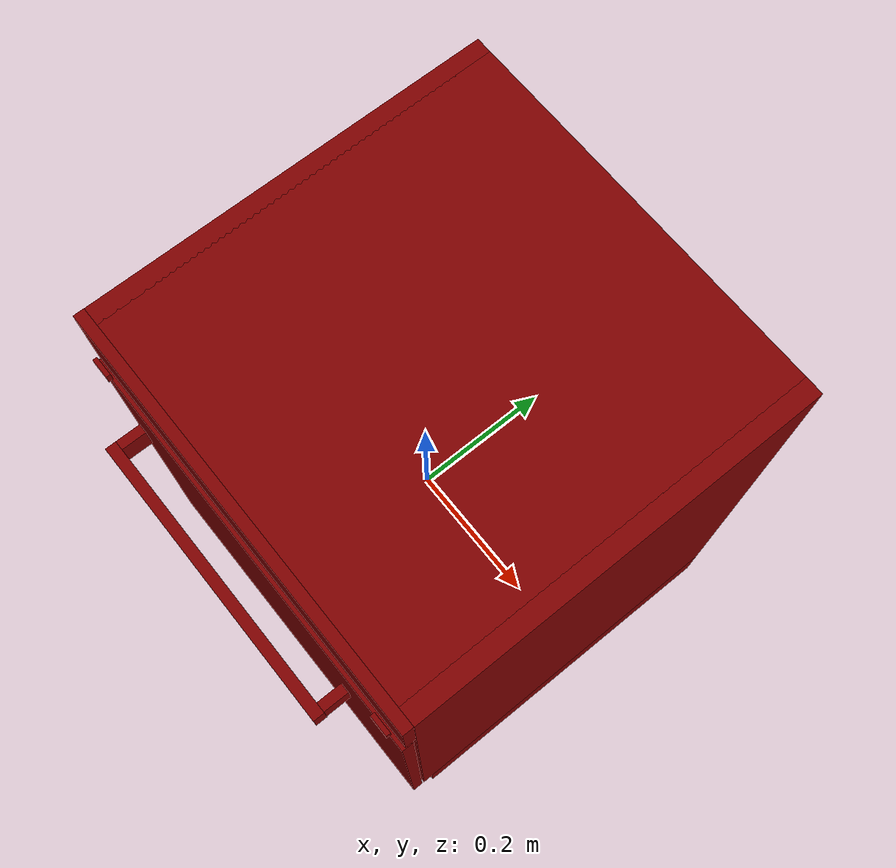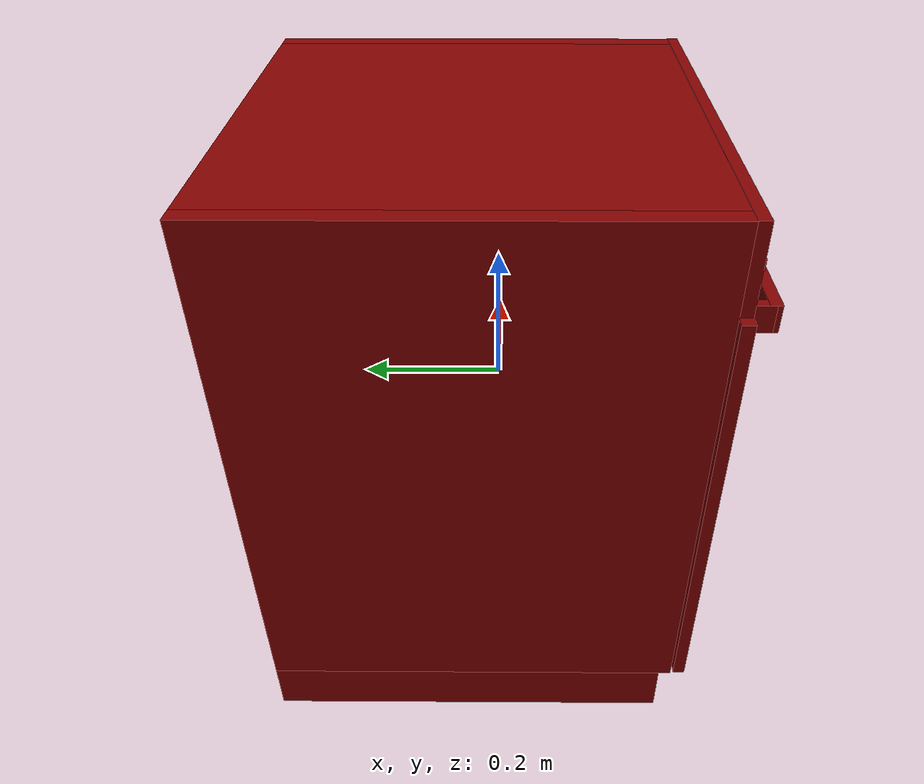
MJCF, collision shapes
<?xml version='1.0' encoding='UTF-8'?>
<mujoco model="model">
  <option timestep="0.002" gravity="0.0 0.0 -9.81"/>
  <compiler angle="radian"/>
  <asset>
    <mesh file="visuals/button_lock.obj" name="button_lock_vis"/>
    <mesh file="visuals/button_power.obj" name="button_power_vis"/>
    <mesh file="visuals/Body001.obj" name="Body001_vis"/>
    <mesh file="visuals/door.obj" name="door_vis"/>
    <mesh file="visuals/rack0.obj" name="rack0_vis"/>
    <mesh file="visuals/rack1.obj" name="rack1_vis"/>
    <texture file="visuals/T_BC001.png" name="Body001_material" type="2d"/>
    <material name="Body001_material" rgba="1 1 1 1.0" texture="Body001_material" shininess="0.5" specular="1.5"/>
    <texture file="visuals/T_BC001.png" name="button_lock_material" type="2d"/>
    <material name="button_lock_material" rgba="1 1 1 1.0" texture="button_lock_material" shininess="0.5" specular="0.3103448502657381"/>
    <texture file="visuals/T_BC001.png" name="button_power_material" type="2d"/>
    <material name="button_power_material" rgba="1 1 1 1.0" texture="button_power_material" shininess="0.5" specular="0.3103448502657381"/>
    <texture file="visuals/T_BC001.png" name="door_material" type="2d"/>
    <material name="door_material" rgba="1 1 1 1.0" texture="door_material" shininess="0.5" specular="1.5"/>
    <texture file="visuals/T_BC001.png" name="rack0_material" type="2d"/>
    <material name="rack0_material" rgba="1 1 1 1.0" texture="rack0_material" shininess="0.5" specular="2"/>
    <texture file="visuals/T_BC001.png" name="rack1_material" type="2d"/>
    <material name="rack1_material" rgba="1 1 1 1.0" texture="rack1_material" shininess="0.5" specular="2"/>
  </asset>
  <default>
    <default class="visual">
      <geom conaffinity="0" contype="0" group="1" type="mesh"/>
    </default>
    <default class="collision">
      <geom group="0" rgba="0.5 0 0 0.5"/>
    </default>
    <default class="spawn">
      <geom group="0" rgba="1 1 1 0.5" contype="0" conaffinity="0"/>
      <site group="0" rgba="1 1 1 0.5"/>
    </default>
    <default class="region">
      <geom group="1" conaffinity="0" contype="0" rgba="0 1 0 0"/>
    </default>
  </default>
  <worldbody>
    <body>
      <body name="object">
        <geom mesh="Body001_vis" type="mesh" solimp="0.998 0.998 0.001" solref="0.001 1" friction="0.95 0.3 0.1" class="visual" material="Body001_material"/>
        <geom class="collision" type="box" pos="-0.2863612174987793 0.03645787760615349 0.03745238482952118" size="0.013185514137148857 0.2885710597038269 0.36568883061408997" quat="1.0 0.0 0.0 0.0" density="1000.0"/>
        <geom class="collision" type="box" pos="0.00023471744498237967 0.04490793123841286 -0.3646758794784546" size="0.29972556233406067 0.2801210284233093 0.04008335992693901" quat="1.0 0.0 0.0 0.0" density="1000.0"/>
        <geom class="collision" type="box" pos="0.28683263063430786 0.03645787760615349 0.03745238482952118" size="0.013127646408975124 0.2885710597038269 0.36568883061408997" quat="1.0 0.0 0.0 0.0" density="1000.0"/>
        <geom class="collision" type="box" pos="-0.00024148776719812304 0.030323738232254982 -0.3138568103313446" size="0.28104040026664734 0.28243690729141235 0.015236183069646358" quat="1.0 0.0 0.0 0.0" density="1000.0"/>
        <geom class="collision" type="box" pos="-0.0010394877754151821 0.036457862704992294 0.33478978276252747" size="0.2753244936466217 0.2885710895061493 0.06835145503282547" quat="1.0 0.0 0.0 0.0" density="1000.0"/>
        <geom class="collision" type="box" pos="9.530504758004099e-05 -0.2594534158706665 0.34790101647377014" size="0.2994883954524994 0.007510057184845209 0.05583476275205612" quat="1.0 0.0 0.0 0.0" density="1000.0"/>
        <geom class="collision" type="box" pos="-0.0010394877754151821 0.2612360119819641 -0.03012213110923767" size="0.2753244936466217 0.06379295140504837 0.29796531796455383" quat="1.0 0.0 0.0 0.0" density="1000.0"/>
        <body name="button_lock">
          <joint axis="0.0 1.0 0.0" pos="0.26913002133369446 -0.2744686007499695 0.33885496854782104" limited="true" name="button_lock_joint" range="0.0 0.002" type="slide" damping="1" frictionloss="1" armature=".01" stiffness="0.05"/>
          <geom mesh="button_lock_vis" type="mesh" solimp="0.998 0.998 0.001" solref="0.001 1" friction="0.95 0.3 0.1" class="visual" material="button_lock_material"/>
          <geom class="collision" type="box" pos="0.2690470516681671 -0.2748238742351532 0.3388233482837677" size="0.01397554948925972 0.003094700165092945 0.007237176410853863" quat="1.0 0.0 0.0 0.0" density="1000.0"/>
        </body>
        <body name="button_power">
          <joint axis="0.0 1.0 0.0" pos="-0.2566455602645874 -0.2744686007499695 0.33885496854782104" limited="true" name="button_power_joint" range="0.0 0.002" type="slide" damping="1" frictionloss="1" armature=".01" stiffness="0.05"/>
          <geom mesh="button_power_vis" type="mesh" solimp="0.998 0.998 0.001" solref="0.001 1" friction="0.95 0.3 0.1" class="visual" material="button_power_material"/>
          <geom class="collision" type="box" pos="-0.2566499710083008 -0.2748238742351532 0.3388233482837677" size="0.01397554948925972 0.003094700165092945 0.007237176410853863" quat="1.0 0.0 0.0 0.0" density="1000.0"/>
        </body>
        <body name="door">
          <joint axis="1.0 0.0 0.0" pos="-0.00016437000886071473 -0.252153605222702 -0.32476499676704407" limited="true" name="door_joint" range="0.0 0.5235987755982988" type="hinge" damping="1" frictionloss="1" armature=".01" stiffness="2" springref="-10"/>
          <geom mesh="door_vis" type="mesh" solimp="0.998 0.998 0.001" solref="0.001 1" friction="0.95 0.3 0.1" class="visual" material="door_material"/>
          <geom class="collision" type="box" pos="0.00023371443967334926 -0.2639823853969574 -0.02148553356528282" size="0.2995140850543976 0.008075128309428692 0.30420631170272827" quat="1.0 0.0 0.0 0.0" name="door_main" density="1000.0"/>
          <geom class="collision" type="box" pos="-0.002390836365520954 -0.3206610679626465 0.23356878757476807" size="0.20987266302108765 0.007773557677865028 0.018761277198791504" quat="1.0 0.0 0.0 0.0" name="door_handle_main" density="1000.0"/>
          <geom class="collision" type="box" pos="0.19976726174354553 -0.29979902505874634 0.23338714241981506" size="0.0068054767325520515 0.0221786517649889 0.01891442947089672" quat="1.0 0.0 0.0 0.0" density="1000.0"/>
          <geom class="collision" type="box" pos="-0.20556862652301788 -0.29979902505874634 0.23338714241981506" size="0.0068054767325520515 0.02217864990234375 0.01891442947089672" quat="1.0 0.0 0.0 0.0" density="1000.0"/>
        </body>
        <body name="rack0">
          <geom class="region" name="reg_rack0" type="box" pos="0.0007088780403137207 -0.024009086191654205 -0.151173647493124" size="0.2606806755065918 0.20572366565465927 0.05504291132092476"/>
          <joint axis="0.0 -1.0 0.0" pos="0.0003519001475069672 -0.024006037041544914 -0.15457352995872498" limited="true" name="rack0_joint" range="0.0 0.075" type="slide" damping="1" frictionloss="1" armature=".01" stiffness="0.05"/>
          <geom mesh="rack0_vis" type="mesh" solimp="0.998 0.998 0.001" solref="0.001 1" friction="0.95 0.3 0.1" class="visual" material="rack0_material"/>
          <geom class="collision" type="box" pos="0.00025814533000811934 -0.23871250450611115 -0.15406398475170135" size="0.2614753842353821 0.005201370920985937 0.06295718997716904" quat="1.0 0.0 0.0 0.0" density="1000.0"/>
          <geom class="collision" type="box" pos="-0.00025299994740635157 -0.02300320565700531 -0.21504847705364227" size="0.2614753842353821 0.2149050533771515 0.005201357416808605" quat="1.0 0.0 0.0 0.0" density="1000.0"/>
          <geom class="collision" type="box" pos="0.2628632187843323 -0.02381667122244835 -0.15406398475170135" size="0.005201329942792654 0.22008053958415985 0.06295718997716904" quat="1.0 0.0 0.0 0.0" density="1000.0"/>
          <geom class="collision" type="box" pos="-0.2624749541282654 -0.02381667122244835 -0.15406398475170135" size="0.005201329942792654 0.22008053958415985 0.06295718997716904" quat="1.0 0.0 0.0 0.0" density="1000.0"/>
          <geom class="collision" type="box" pos="0.0002581449516583234 0.19075925648212433 -0.15406398475170135" size="0.2614753842353821 0.005201370920985937 0.06295718997716904" quat="1.0 0.0 0.0 0.0" density="1000.0"/>
          <geom class="collision" type="cylinder" pos="-0.021626193076372147 -0.17402605712413788 -0.17144694924354553" size="0.002833184553310275 0.03910676762461662" quat="3.1640510655961407e-07 2.60547872166228e-09 -0.13360664248466492 -0.9910344481468201" density="1000.0"/>
          <geom class="collision" type="cylinder" pos="-0.021626193076372147 -0.0990915521979332 -0.17144694924354553" size="0.002833184553310275 0.03910676762461662" quat="3.1640510655961407e-07 2.60547872166228e-09 -0.13360664248466492 -0.9910344481468201" density="1000.0"/>
          <geom class="collision" type="cylinder" pos="-0.021626193076372147 0.04792652279138565 -0.17144694924354553" size="0.002833184553310275 0.03910676762461662" quat="3.1640510655961407e-07 2.60547872166228e-09 -0.13360664248466492 -0.9910344481468201" density="1000.0"/>
          <geom class="collision" type="cylinder" pos="-0.021626193076372147 0.14162613451480865 -0.17140299081802368" size="0.002833184553310275 0.03910676762461662" quat="5.616396947516478e-07 2.984815239415184e-08 0.1362524777650833 -0.9906741380691528" density="1000.0"/>
          <geom class="collision" type="cylinder" pos="-0.06561872363090515 -0.17402605712413788 -0.17144694924354553" size="0.002833184553310275 0.03910676762461662" quat="3.1640510655961407e-07 2.60547872166228e-09 -0.13360664248466492 -0.9910344481468201" density="1000.0"/>
          <geom class="collision" type="cylinder" pos="-0.06561872363090515 -0.0990915521979332 -0.17144694924354553" size="0.002833184553310275 0.03910676762461662" quat="3.1640510655961407e-07 2.60547872166228e-09 -0.13360664248466492 -0.9910344481468201" density="1000.0"/>
          <geom class="collision" type="cylinder" pos="-0.06561872363090515 0.04792652279138565 -0.17144694924354553" size="0.002833184553310275 0.03910676762461662" quat="3.1640510655961407e-07 2.60547872166228e-09 -0.13360664248466492 -0.9910344481468201" density="1000.0"/>
          <geom class="collision" type="cylinder" pos="-0.06561872363090515 0.14162613451480865 -0.17140299081802368" size="0.002833184553310275 0.03910676762461662" quat="5.616396947516478e-07 2.984815239415184e-08 0.1362524777650833 -0.9906741380691528" density="1000.0"/>
          <geom class="collision" type="cylinder" pos="-0.10791927576065063 -0.17402605712413788 -0.17144694924354553" size="0.002833184553310275 0.03910676762461662" quat="3.1640510655961407e-07 2.60547872166228e-09 -0.13360664248466492 -0.9910344481468201" density="1000.0"/>
          <geom class="collision" type="cylinder" pos="-0.10791927576065063 -0.0990915521979332 -0.17144694924354553" size="0.002833184553310275 0.03910676762461662" quat="3.1640510655961407e-07 2.60547872166228e-09 -0.13360664248466492 -0.9910344481468201" density="1000.0"/>
          <geom class="collision" type="cylinder" pos="-0.10791927576065063 0.04792652279138565 -0.17144694924354553" size="0.002833184553310275 0.03910676762461662" quat="3.1640510655961407e-07 2.60547872166228e-09 -0.13360664248466492 -0.9910344481468201" density="1000.0"/>
          <geom class="collision" type="cylinder" pos="-0.10791927576065063 0.14162613451480865 -0.17140299081802368" size="0.002833184553310275 0.03910676762461662" quat="5.616396947516478e-07 2.984815239415184e-08 0.1362524777650833 -0.9906741380691528" density="1000.0"/>
          <geom class="collision" type="cylinder" pos="-0.15130582451820374 -0.17402607202529907 -0.17144694924354553" size="0.002833184553310275 0.03910676762461662" quat="3.1640510655961407e-07 2.60547872166228e-09 -0.13360664248466492 -0.9910344481468201" density="1000.0"/>
          <geom class="collision" type="cylinder" pos="-0.15130582451820374 -0.09909156709909439 -0.17144694924354553" size="0.002833184553310275 0.03910676762461662" quat="3.1640510655961407e-07 2.60547872166228e-09 -0.13360664248466492 -0.9910344481468201" density="1000.0"/>
          <geom class="collision" type="cylinder" pos="-0.15130582451820374 0.04792650789022446 -0.17144694924354553" size="0.002833184553310275 0.03910676762461662" quat="3.1640510655961407e-07 2.60547872166228e-09 -0.13360664248466492 -0.9910344481468201" density="1000.0"/>
          <geom class="collision" type="cylinder" pos="-0.15130582451820374 0.14162613451480865 -0.17140299081802368" size="0.002833184553310275 0.03910676762461662" quat="5.616396947516478e-07 2.984815239415184e-08 0.1362524777650833 -0.9906741380691528" density="1000.0"/>
          <geom class="collision" type="cylinder" pos="-0.1849353015422821 -0.17402607202529907 -0.17144694924354553" size="0.002833184553310275 0.03910676762461662" quat="3.1640510655961407e-07 2.60547872166228e-09 -0.13360664248466492 -0.9910344481468201" density="1000.0"/>
          <geom class="collision" type="cylinder" pos="-0.1849353015422821 -0.09909156709909439 -0.17144694924354553" size="0.002833184553310275 0.03910676762461662" quat="3.1640510655961407e-07 2.60547872166228e-09 -0.13360664248466492 -0.9910344481468201" density="1000.0"/>
          <geom class="collision" type="cylinder" pos="-0.1849353015422821 0.04792650789022446 -0.17144694924354553" size="0.002833184553310275 0.03910676762461662" quat="3.1640510655961407e-07 2.60547872166228e-09 -0.13360664248466492 -0.9910344481468201" density="1000.0"/>
          <geom class="collision" type="cylinder" pos="-0.1849353015422821 0.14162613451480865 -0.17140299081802368" size="0.002833184553310275 0.03910676762461662" quat="5.616396947516478e-07 2.984815239415184e-08 0.1362524777650833 -0.9906741380691528" density="1000.0"/>
          <geom class="collision" type="cylinder" pos="-0.2286468893289566 -0.17402604222297668 -0.17144694924354553" size="0.002833184553310275 0.03910676762461662" quat="3.1640510655961407e-07 2.60547872166228e-09 -0.13360664248466492 -0.9910344481468201" density="1000.0"/>
          <geom class="collision" type="cylinder" pos="-0.2286468893289566 -0.099091537296772 -0.17144694924354553" size="0.002833184553310275 0.03910676762461662" quat="3.1640510655961407e-07 2.60547872166228e-09 -0.13360664248466492 -0.9910344481468201" density="1000.0"/>
          <geom class="collision" type="cylinder" pos="-0.2286468893289566 0.047926537692546844 -0.17144694924354553" size="0.002833184553310275 0.03910676762461662" quat="3.1640510655961407e-07 2.60547872166228e-09 -0.13360664248466492 -0.9910344481468201" density="1000.0"/>
          <geom class="collision" type="cylinder" pos="-0.2286468893289566 0.14162614941596985 -0.1714029759168625" size="0.002833184553310275 0.03910676762461662" quat="5.616396947516478e-07 2.984815239415184e-08 0.1362524777650833 -0.9906741380691528" density="1000.0"/>
          <geom class="collision" type="cylinder" pos="0.020277446135878563 -0.17402605712413788 -0.17144694924354553" size="0.002833184553310275 0.03910676762461662" quat="3.1640510655961407e-07 2.60547872166228e-09 -0.13360664248466492 -0.9910344481468201" density="1000.0"/>
          <geom class="collision" type="cylinder" pos="0.020277446135878563 -0.0990915521979332 -0.17144694924354553" size="0.002833184553310275 0.03910676762461662" quat="3.1640510655961407e-07 2.60547872166228e-09 -0.13360664248466492 -0.9910344481468201" density="1000.0"/>
          <geom class="collision" type="cylinder" pos="0.020277446135878563 0.04792652279138565 -0.17144694924354553" size="0.002833184553310275 0.03910676762461662" quat="3.1640510655961407e-07 2.60547872166228e-09 -0.13360664248466492 -0.9910344481468201" density="1000.0"/>
          <geom class="collision" type="cylinder" pos="0.020277446135878563 0.14162613451480865 -0.17140299081802368" size="0.002833184553310275 0.03910676762461662" quat="5.616396947516478e-07 2.984815239415184e-08 0.1362524777650833 -0.9906741380691528" density="1000.0"/>
          <geom class="collision" type="cylinder" pos="0.06385838985443115 -0.17402607202529907 -0.17144694924354553" size="0.002833184553310275 0.03910676762461662" quat="3.1640510655961407e-07 2.60547872166228e-09 -0.13360664248466492 -0.9910344481468201" density="1000.0"/>
          <geom class="collision" type="cylinder" pos="0.06385838985443115 -0.09909156709909439 -0.17144694924354553" size="0.002833184553310275 0.03910676762461662" quat="3.1640510655961407e-07 2.60547872166228e-09 -0.13360664248466492 -0.9910344481468201" density="1000.0"/>
          <geom class="collision" type="cylinder" pos="0.06385838985443115 0.04792650789022446 -0.17144694924354553" size="0.002833184553310275 0.03910676762461662" quat="3.1640510655961407e-07 2.60547872166228e-09 -0.13360664248466492 -0.9910344481468201" density="1000.0"/>
          <geom class="collision" type="cylinder" pos="0.06385838985443115 0.14162613451480865 -0.17140299081802368" size="0.002833184553310275 0.03910676762461662" quat="5.616396947516478e-07 2.984815239415184e-08 0.1362524777650833 -0.9906741380691528" density="1000.0"/>
          <geom class="collision" type="cylinder" pos="0.10643366724252701 -0.17402607202529907 -0.17144694924354553" size="0.002833184553310275 0.03910676762461662" quat="3.1640510655961407e-07 2.60547872166228e-09 -0.13360664248466492 -0.9910344481468201" density="1000.0"/>
          <geom class="collision" type="cylinder" pos="0.10643366724252701 -0.09909156709909439 -0.17144694924354553" size="0.002833184553310275 0.03910676762461662" quat="3.1640510655961407e-07 2.60547872166228e-09 -0.13360664248466492 -0.9910344481468201" density="1000.0"/>
          <geom class="collision" type="cylinder" pos="0.10643366724252701 0.04792650789022446 -0.17144694924354553" size="0.002833184553310275 0.03910676762461662" quat="3.1640510655961407e-07 2.60547872166228e-09 -0.13360664248466492 -0.9910344481468201" density="1000.0"/>
          <geom class="collision" type="cylinder" pos="0.10643366724252701 0.14162613451480865 -0.17140299081802368" size="0.002833184553310275 0.03910676762461662" quat="5.616396947516478e-07 2.984815239415184e-08 0.1362524777650833 -0.9906741380691528" density="1000.0"/>
          <geom class="collision" type="cylinder" pos="0.14940392971038818 -0.17402607202529907 -0.17144694924354553" size="0.002833184553310275 0.03910676762461662" quat="3.1640510655961407e-07 2.60547872166228e-09 -0.13360664248466492 -0.9910344481468201" density="1000.0"/>
          <geom class="collision" type="cylinder" pos="0.14940392971038818 -0.09909156709909439 -0.17144694924354553" size="0.002833184553310275 0.03910676762461662" quat="3.1640510655961407e-07 2.60547872166228e-09 -0.13360664248466492 -0.9910344481468201" density="1000.0"/>
          <geom class="collision" type="cylinder" pos="0.14940392971038818 0.04792650789022446 -0.17144694924354553" size="0.002833184553310275 0.03910676762461662" quat="3.1640510655961407e-07 2.60547872166228e-09 -0.13360664248466492 -0.9910344481468201" density="1000.0"/>
          <geom class="collision" type="cylinder" pos="0.14940392971038818 0.14162613451480865 -0.17140299081802368" size="0.002833184553310275 0.03910676762461662" quat="5.616396947516478e-07 2.984815239415184e-08 0.1362524777650833 -0.9906741380691528" density="1000.0"/>
          <geom class="collision" type="cylinder" pos="0.19291718304157257 -0.17402607202529907 -0.17144694924354553" size="0.002833184553310275 0.03910676762461662" quat="3.1640510655961407e-07 2.60547872166228e-09 -0.13360664248466492 -0.9910344481468201" density="1000.0"/>
          <geom class="collision" type="cylinder" pos="0.19291718304157257 -0.09909156709909439 -0.17144694924354553" size="0.002833184553310275 0.03910676762461662" quat="3.1640510655961407e-07 2.60547872166228e-09 -0.13360664248466492 -0.9910344481468201" density="1000.0"/>
          <geom class="collision" type="cylinder" pos="0.19291718304157257 0.04792650789022446 -0.17144694924354553" size="0.002833184553310275 0.03910676762461662" quat="3.1640510655961407e-07 2.60547872166228e-09 -0.13360664248466492 -0.9910344481468201" density="1000.0"/>
          <geom class="collision" type="cylinder" pos="0.19291718304157257 0.14162613451480865 -0.17140299081802368" size="0.002833184553310275 0.03910676762461662" quat="5.616396947516478e-07 2.984815239415184e-08 0.1362524777650833 -0.9906741380691528" density="1000.0"/>
          <geom class="collision" type="cylinder" pos="0.23607288300991058 -0.17402608692646027 -0.17144694924354553" size="0.002833184553310275 0.03910676762461662" quat="3.1640510655961407e-07 2.60547872166228e-09 -0.13360664248466492 -0.9910344481468201" density="1000.0"/>
          <geom class="collision" type="cylinder" pos="0.23607288300991058 -0.09909158200025558 -0.17144694924354553" size="0.002833184553310275 0.03910676762461662" quat="3.1640510655961407e-07 2.60547872166228e-09 -0.13360664248466492 -0.9910344481468201" density="1000.0"/>
          <geom class="collision" type="cylinder" pos="0.23607288300991058 0.04792649298906326 -0.17144694924354553" size="0.002833184553310275 0.03910676762461662" quat="3.1640510655961407e-07 2.60547872166228e-09 -0.13360664248466492 -0.9910344481468201" density="1000.0"/>
          <geom class="collision" type="cylinder" pos="0.23607288300991058 0.14162610471248627 -0.17140300571918488" size="0.002833184553310275 0.03910676762461662" quat="5.616396947516478e-07 2.984815239415184e-08 0.1362524777650833 -0.9906741380691528" density="1000.0"/>
        </body>
        <body name="rack1">
          <geom class="region" name="reg_rack1" type="box" pos="0.0007088780403137207 -0.024009086191654205 0.08464317303150892" size="0.2606806755065918 0.20572366565465927 0.05496459919959307"/>
          <joint axis="0.0 -1.0 0.0" pos="0.0003519299498293549 -0.024005496874451637 0.08114027231931686" limited="true" name="rack1_joint" range="0.0 0.21" type="slide" damping="1" frictionloss="1" armature=".01" stiffness="0.05"/>
          <geom mesh="rack1_vis" type="mesh" solimp="0.998 0.998 0.001" solref="0.001 1" friction="0.95 0.3 0.1" class="visual" material="rack1_material"/>
          <geom class="collision" type="box" pos="-0.2624749541282654 -0.02381667122244835 0.08390714973211288" size="0.005201329942792654 0.22008053958415985 0.06295718997716904" quat="1.0 0.0 0.0 0.0" density="1000.0"/>
          <geom class="collision" type="box" pos="0.26234859228134155 -0.02381667122244835 0.08390714973211288" size="0.005201329942792654 0.22008053958415985 0.06295718997716904" quat="1.0 0.0 0.0 0.0" density="1000.0"/>
          <geom class="collision" type="box" pos="-0.00025299994740635157 -0.02300320565700531 0.02292264811694622" size="0.2614753842353821 0.2149050533771515 0.005201357416808605" quat="1.0 0.0 0.0 0.0" density="1000.0"/>
          <geom class="collision" type="box" pos="0.00025814533000811934 -0.23871250450611115 0.08390714973211288" size="0.2614753842353821 0.005201370920985937 0.06295718997716904" quat="1.0 0.0 0.0 0.0" density="1000.0"/>
          <geom class="collision" type="box" pos="0.0002581449516583234 0.19075925648212433 0.08390714973211288" size="0.2614753842353821 0.005201370920985937 0.06295718997716904" quat="1.0 0.0 0.0 0.0" density="1000.0"/>
          <geom class="collision" type="cylinder" pos="0.23607288300991058 -0.17402608692646027 0.061979494988918304" size="0.002833184553310275 0.03910676762461662" quat="3.1640510655961407e-07 2.60547872166228e-09 -0.13360664248466492 -0.9910344481468201" density="1000.0"/>
          <geom class="collision" type="cylinder" pos="0.19291718304157257 -0.17402607202529907 0.061979494988918304" size="0.002833184553310275 0.03910676762461662" quat="3.1640510655961407e-07 2.60547872166228e-09 -0.13360664248466492 -0.9910344481468201" density="1000.0"/>
          <geom class="collision" type="cylinder" pos="0.14940392971038818 -0.17402607202529907 0.061979494988918304" size="0.002833184553310275 0.03910676762461662" quat="3.1640510655961407e-07 2.60547872166228e-09 -0.13360664248466492 -0.9910344481468201" density="1000.0"/>
          <geom class="collision" type="cylinder" pos="0.10643366724252701 -0.17402607202529907 0.061979494988918304" size="0.002833184553310275 0.03910676762461662" quat="3.1640510655961407e-07 2.60547872166228e-09 -0.13360664248466492 -0.9910344481468201" density="1000.0"/>
          <geom class="collision" type="cylinder" pos="0.06385838985443115 -0.17402607202529907 0.061979494988918304" size="0.002833184553310275 0.03910676762461662" quat="3.1640510655961407e-07 2.60547872166228e-09 -0.13360664248466492 -0.9910344481468201" density="1000.0"/>
          <geom class="collision" type="cylinder" pos="0.020277446135878563 -0.17402605712413788 0.061979494988918304" size="0.002833184553310275 0.03910676762461662" quat="3.1640510655961407e-07 2.60547872166228e-09 -0.13360664248466492 -0.9910344481468201" density="1000.0"/>
          <geom class="collision" type="cylinder" pos="-0.2286468893289566 -0.17402604222297668 0.061979494988918304" size="0.002833184553310275 0.03910676762461662" quat="3.1640510655961407e-07 2.60547872166228e-09 -0.13360664248466492 -0.9910344481468201" density="1000.0"/>
          <geom class="collision" type="cylinder" pos="-0.1849353015422821 -0.17402607202529907 0.061979494988918304" size="0.002833184553310275 0.03910676762461662" quat="3.1640510655961407e-07 2.60547872166228e-09 -0.13360664248466492 -0.9910344481468201" density="1000.0"/>
          <geom class="collision" type="cylinder" pos="-0.15130582451820374 -0.17402607202529907 0.061979494988918304" size="0.002833184553310275 0.03910676762461662" quat="3.1640510655961407e-07 2.60547872166228e-09 -0.13360664248466492 -0.9910344481468201" density="1000.0"/>
          <geom class="collision" type="cylinder" pos="-0.10791927576065063 -0.17402605712413788 0.061979494988918304" size="0.002833184553310275 0.03910676762461662" quat="3.1640510655961407e-07 2.60547872166228e-09 -0.13360664248466492 -0.9910344481468201" density="1000.0"/>
          <geom class="collision" type="cylinder" pos="-0.06561872363090515 -0.17402605712413788 0.061979494988918304" size="0.002833184553310275 0.03910676762461662" quat="3.1640510655961407e-07 2.60547872166228e-09 -0.13360664248466492 -0.9910344481468201" density="1000.0"/>
          <geom class="collision" type="cylinder" pos="-0.021626193076372147 -0.17402605712413788 0.061979494988918304" size="0.002833184553310275 0.03910676762461662" quat="3.1640510655961407e-07 2.60547872166228e-09 -0.13360664248466492 -0.9910344481468201" density="1000.0"/>
          <geom class="collision" type="cylinder" pos="0.23607288300991058 -0.09909158200025558 0.061979494988918304" size="0.002833184553310275 0.03910676762461662" quat="3.1640510655961407e-07 2.60547872166228e-09 -0.13360664248466492 -0.9910344481468201" density="1000.0"/>
          <geom class="collision" type="cylinder" pos="0.19291718304157257 -0.09909156709909439 0.061979494988918304" size="0.002833184553310275 0.03910676762461662" quat="3.1640510655961407e-07 2.60547872166228e-09 -0.13360664248466492 -0.9910344481468201" density="1000.0"/>
          <geom class="collision" type="cylinder" pos="0.14940392971038818 -0.09909156709909439 0.061979494988918304" size="0.002833184553310275 0.03910676762461662" quat="3.1640510655961407e-07 2.60547872166228e-09 -0.13360664248466492 -0.9910344481468201" density="1000.0"/>
          <geom class="collision" type="cylinder" pos="0.10643366724252701 -0.09909156709909439 0.061979494988918304" size="0.002833184553310275 0.03910676762461662" quat="3.1640510655961407e-07 2.60547872166228e-09 -0.13360664248466492 -0.9910344481468201" density="1000.0"/>
          <geom class="collision" type="cylinder" pos="0.06385838985443115 -0.09909156709909439 0.061979494988918304" size="0.002833184553310275 0.03910676762461662" quat="3.1640510655961407e-07 2.60547872166228e-09 -0.13360664248466492 -0.9910344481468201" density="1000.0"/>
          <geom class="collision" type="cylinder" pos="0.020277446135878563 -0.0990915521979332 0.061979494988918304" size="0.002833184553310275 0.03910676762461662" quat="3.1640510655961407e-07 2.60547872166228e-09 -0.13360664248466492 -0.9910344481468201" density="1000.0"/>
          <geom class="collision" type="cylinder" pos="-0.2286468893289566 -0.099091537296772 0.061979494988918304" size="0.002833184553310275 0.03910676762461662" quat="3.1640510655961407e-07 2.60547872166228e-09 -0.13360664248466492 -0.9910344481468201" density="1000.0"/>
          <geom class="collision" type="cylinder" pos="-0.1849353015422821 -0.09909156709909439 0.061979494988918304" size="0.002833184553310275 0.03910676762461662" quat="3.1640510655961407e-07 2.60547872166228e-09 -0.13360664248466492 -0.9910344481468201" density="1000.0"/>
          <geom class="collision" type="cylinder" pos="-0.15130582451820374 -0.09909156709909439 0.061979494988918304" size="0.002833184553310275 0.03910676762461662" quat="3.1640510655961407e-07 2.60547872166228e-09 -0.13360664248466492 -0.9910344481468201" density="1000.0"/>
          <geom class="collision" type="cylinder" pos="-0.10791927576065063 -0.0990915521979332 0.061979494988918304" size="0.002833184553310275 0.03910676762461662" quat="3.1640510655961407e-07 2.60547872166228e-09 -0.13360664248466492 -0.9910344481468201" density="1000.0"/>
          <geom class="collision" type="cylinder" pos="-0.06561872363090515 -0.0990915521979332 0.061979494988918304" size="0.002833184553310275 0.03910676762461662" quat="3.1640510655961407e-07 2.60547872166228e-09 -0.13360664248466492 -0.9910344481468201" density="1000.0"/>
          <geom class="collision" type="cylinder" pos="-0.021626193076372147 -0.0990915521979332 0.061979494988918304" size="0.002833184553310275 0.03910676762461662" quat="3.1640510655961407e-07 2.60547872166228e-09 -0.13360664248466492 -0.9910344481468201" density="1000.0"/>
          <geom class="collision" type="cylinder" pos="0.23607288300991058 0.04792649298906326 0.061979494988918304" size="0.002833184553310275 0.03910676762461662" quat="3.1640510655961407e-07 2.60547872166228e-09 -0.13360664248466492 -0.9910344481468201" density="1000.0"/>
          <geom class="collision" type="cylinder" pos="0.19291718304157257 0.04792650789022446 0.061979494988918304" size="0.002833184553310275 0.03910676762461662" quat="3.1640510655961407e-07 2.60547872166228e-09 -0.13360664248466492 -0.9910344481468201" density="1000.0"/>
          <geom class="collision" type="cylinder" pos="0.14940392971038818 0.04792650789022446 0.061979494988918304" size="0.002833184553310275 0.03910676762461662" quat="3.1640510655961407e-07 2.60547872166228e-09 -0.13360664248466492 -0.9910344481468201" density="1000.0"/>
          <geom class="collision" type="cylinder" pos="0.10643366724252701 0.04792650789022446 0.061979494988918304" size="0.002833184553310275 0.03910676762461662" quat="3.1640510655961407e-07 2.60547872166228e-09 -0.13360664248466492 -0.9910344481468201" density="1000.0"/>
          <geom class="collision" type="cylinder" pos="0.06385838985443115 0.04792650789022446 0.061979494988918304" size="0.002833184553310275 0.03910676762461662" quat="3.1640510655961407e-07 2.60547872166228e-09 -0.13360664248466492 -0.9910344481468201" density="1000.0"/>
          <geom class="collision" type="cylinder" pos="0.020277446135878563 0.04792652279138565 0.061979494988918304" size="0.002833184553310275 0.03910676762461662" quat="3.1640510655961407e-07 2.60547872166228e-09 -0.13360664248466492 -0.9910344481468201" density="1000.0"/>
          <geom class="collision" type="cylinder" pos="-0.2286468893289566 0.047926537692546844 0.061979494988918304" size="0.002833184553310275 0.03910676762461662" quat="3.1640510655961407e-07 2.60547872166228e-09 -0.13360664248466492 -0.9910344481468201" density="1000.0"/>
          <geom class="collision" type="cylinder" pos="-0.1849353015422821 0.04792650789022446 0.061979494988918304" size="0.002833184553310275 0.03910676762461662" quat="3.1640510655961407e-07 2.60547872166228e-09 -0.13360664248466492 -0.9910344481468201" density="1000.0"/>
          <geom class="collision" type="cylinder" pos="-0.15130582451820374 0.04792650789022446 0.061979494988918304" size="0.002833184553310275 0.03910676762461662" quat="3.1640510655961407e-07 2.60547872166228e-09 -0.13360664248466492 -0.9910344481468201" density="1000.0"/>
          <geom class="collision" type="cylinder" pos="-0.10791927576065063 0.04792652279138565 0.061979494988918304" size="0.002833184553310275 0.03910676762461662" quat="3.1640510655961407e-07 2.60547872166228e-09 -0.13360664248466492 -0.9910344481468201" density="1000.0"/>
          <geom class="collision" type="cylinder" pos="-0.06561872363090515 0.04792652279138565 0.061979494988918304" size="0.002833184553310275 0.03910676762461662" quat="3.1640510655961407e-07 2.60547872166228e-09 -0.13360664248466492 -0.9910344481468201" density="1000.0"/>
          <geom class="collision" type="cylinder" pos="-0.021626193076372147 0.04792652279138565 0.061979494988918304" size="0.002833184553310275 0.03910676762461662" quat="3.1640510655961407e-07 2.60547872166228e-09 -0.13360664248466492 -0.9910344481468201" density="1000.0"/>
          <geom class="collision" type="cylinder" pos="0.23607288300991058 0.14162610471248627 0.06202344596385956" size="0.002833184553310275 0.03910676762461662" quat="5.616396947516478e-07 2.984815239415184e-08 0.1362524777650833 -0.9906741380691528" density="1000.0"/>
          <geom class="collision" type="cylinder" pos="0.19291718304157257 0.14162613451480865 0.06202346086502075" size="0.002833184553310275 0.03910676762461662" quat="5.616396947516478e-07 2.984815239415184e-08 0.1362524777650833 -0.9906741380691528" density="1000.0"/>
          <geom class="collision" type="cylinder" pos="0.14940392971038818 0.14162613451480865 0.06202346086502075" size="0.002833184553310275 0.03910676762461662" quat="5.616396947516478e-07 2.984815239415184e-08 0.1362524777650833 -0.9906741380691528" density="1000.0"/>
          <geom class="collision" type="cylinder" pos="0.10643366724252701 0.14162613451480865 0.06202346086502075" size="0.002833184553310275 0.03910676762461662" quat="5.616396947516478e-07 2.984815239415184e-08 0.1362524777650833 -0.9906741380691528" density="1000.0"/>
          <geom class="collision" type="cylinder" pos="0.06385838985443115 0.14162613451480865 0.06202346086502075" size="0.002833184553310275 0.03910676762461662" quat="5.616396947516478e-07 2.984815239415184e-08 0.1362524777650833 -0.9906741380691528" density="1000.0"/>
          <geom class="collision" type="cylinder" pos="0.020277446135878563 0.14162613451480865 0.06202346086502075" size="0.002833184553310275 0.03910676762461662" quat="5.616396947516478e-07 2.984815239415184e-08 0.1362524777650833 -0.9906741380691528" density="1000.0"/>
          <geom class="collision" type="cylinder" pos="-0.2286468893289566 0.14162614941596985 0.062023475766181946" size="0.002833184553310275 0.03910676762461662" quat="5.616396947516478e-07 2.984815239415184e-08 0.1362524777650833 -0.9906741380691528" density="1000.0"/>
          <geom class="collision" type="cylinder" pos="-0.1849353015422821 0.14162613451480865 0.06202346086502075" size="0.002833184553310275 0.03910676762461662" quat="5.616396947516478e-07 2.984815239415184e-08 0.1362524777650833 -0.9906741380691528" density="1000.0"/>
          <geom class="collision" type="cylinder" pos="-0.15130582451820374 0.14162613451480865 0.06202346086502075" size="0.002833184553310275 0.03910676762461662" quat="5.616396947516478e-07 2.984815239415184e-08 0.1362524777650833 -0.9906741380691528" density="1000.0"/>
          <geom class="collision" type="cylinder" pos="-0.10791927576065063 0.14162613451480865 0.06202346086502075" size="0.002833184553310275 0.03910676762461662" quat="5.616396947516478e-07 2.984815239415184e-08 0.1362524777650833 -0.9906741380691528" density="1000.0"/>
          <geom class="collision" type="cylinder" pos="-0.06561872363090515 0.14162613451480865 0.06202346086502075" size="0.002833184553310275 0.03910676762461662" quat="5.616396947516478e-07 2.984815239415184e-08 0.1362524777650833 -0.9906741380691528" density="1000.0"/>
          <geom class="collision" type="cylinder" pos="-0.021626193076372147 0.14162613451480865 0.06202346086502075" size="0.002833184553310275 0.03910676762461662" quat="5.616396947516478e-07 2.984815239415184e-08 0.1362524777650833 -0.9906741380691528" density="1000.0"/>
        </body>
        <geom class="region" name="reg_int" type="box" pos="5.9023499488830566e-05 -0.027008458971977234 -0.015977025032043457" size="0.27314870059490204 0.22381551563739777 0.28214332461357117"/>
        <geom class="region" name="reg_main" type="box" pos="1.7881393432617188e-07 0.027886807918548584 8.940696716308594e-08" size="0.300162672996521 0.29999998211860657 0.4049999415874481"/>
      </body>
    </body>
  </worldbody>
  <actuator>
    <motor name="button_lock_joint_actuator" joint="button_lock_joint" gear="0.5"/>
    <motor name="button_power_joint_actuator" joint="button_power_joint" gear="0.5"/>
    <motor name="door_joint_actuator" joint="door_joint" gear="50"/>
    <motor name="rack0_joint_actuator" joint="rack0_joint" gear="10"/>
    <motor name="rack1_joint_actuator" joint="rack1_joint" gear="10"/>
  </actuator>
</mujoco>
